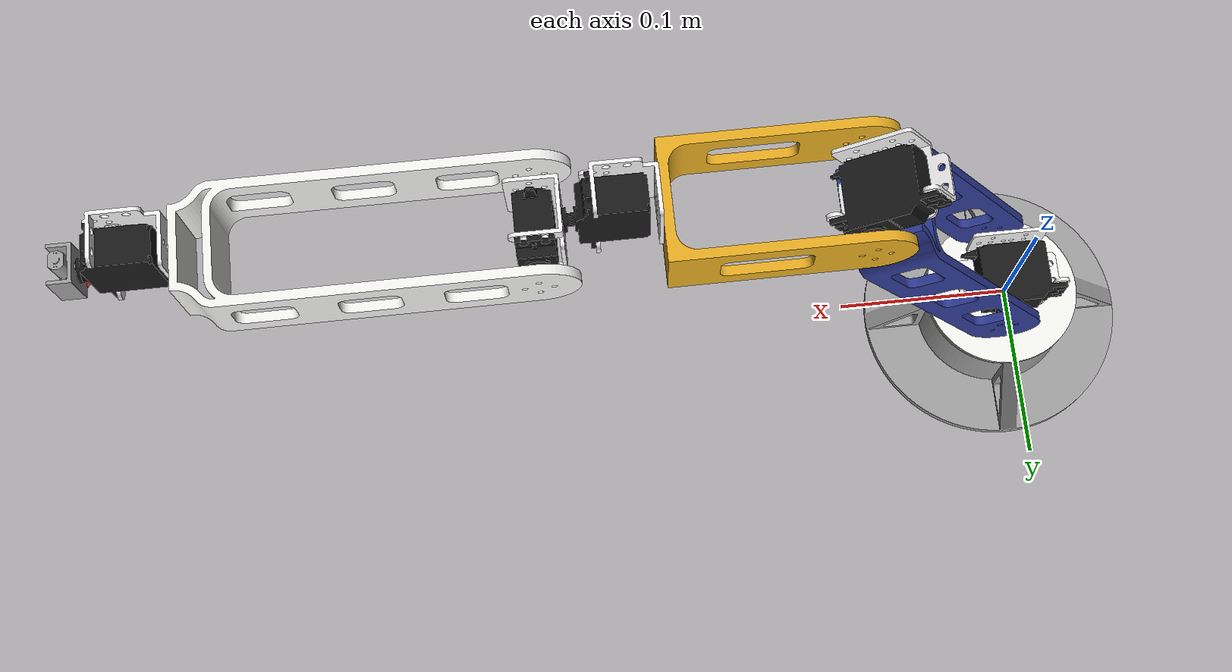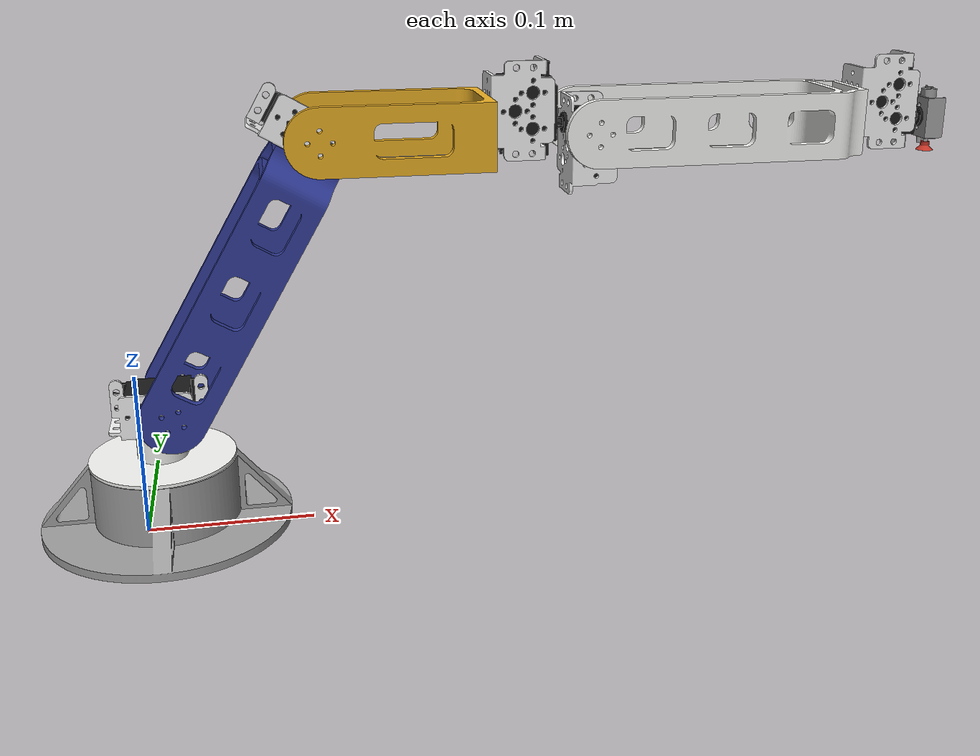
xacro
<?xml version="1.0" ?>
<robot name="robotic_arm_v3" xmlns:xacro="http://www.ros.org/wiki/xacro">

<xacro:include filename="$(find robotic_arm_v3_description)/urdf/materials.xacro" />
<xacro:include filename="$(find robotic_arm_v3_description)/urdf/robotic_arm_v3.trans" />
<xacro:include filename="$(find robotic_arm_v3_description)/urdf/robotic_arm_v3.gazebo" />
<link name="base_link">
  <inertial>
    <origin xyz="0.012483790570884359 0.012013723268763227 0.015430436005487897" rpy="0 0 0"/>
    <mass value="1.5468533136807916"/>
    <inertia ixx="0.001903" iyy="0.001902" izz="0.003158" ixy="-0.0" iyz="-0.0" ixz="-1.7e-05"/>
  </inertial>
  <visual>
    <origin xyz="0 0 0" rpy="0 0 0"/>
    <geometry>
      <mesh filename="package://robotic_arm_v3_description/meshes/base_link.stl" scale="0.001 0.001 0.001"/>
    </geometry>
    <material name="steel_satin"/>
  </visual>
  <collision>
    <origin xyz="0 0 0" rpy="0 0 0"/>
    <geometry>
      <mesh filename="package://robotic_arm_v3_description/meshes/base_link.stl" scale="0.001 0.001 0.001"/>
    </geometry>
  </collision>
</link>

<link name="MG996R_v5_1">
  <inertial>
    <origin xyz="0.0005296585036703434 1.984599674501042e-06 0.016794911451686104" rpy="0 0 0"/>
    <mass value="0.05266070207626033"/>
    <inertia ixx="8e-06" iyy="1.3e-05" izz="8e-06" ixy="-0.0" iyz="0.0" ixz="-1e-06"/>
  </inertial>
  <visual>
    <origin xyz="-0.002 -0.012014 -0.005" rpy="0 0 0"/>
    <geometry>
      <mesh filename="package://robotic_arm_v3_description/meshes/MG996R_v5_1.stl" scale="0.001 0.001 0.001"/>
    </geometry>
    <material name="plastic_glossy_black"/>
  </visual>
  <collision>
    <origin xyz="-0.002 -0.012014 -0.005" rpy="0 0 0"/>
    <geometry>
      <mesh filename="package://robotic_arm_v3_description/meshes/MG996R_v5_1.stl" scale="0.001 0.001 0.001"/>
    </geometry>
  </collision>
</link>

<link name="link_1_1">
  <inertial>
    <origin xyz="-4.227557418717831e-10 -2.7652828298030396e-07 0.004140012337718685" rpy="0 0 0"/>
    <mass value="0.026178551905163206"/>
    <inertia ixx="8e-06" iyy="8e-06" izz="1.4e-05" ixy="-0.0" iyz="-0.0" ixz="0.0"/>
  </inertial>
  <visual>
    <origin xyz="-0.011436 -0.012036 -0.04487" rpy="0 0 0"/>
    <geometry>
      <mesh filename="package://robotic_arm_v3_description/meshes/link_1_1.stl" scale="0.001 0.001 0.001"/>
    </geometry>
    <material name="abs_white"/>
  </visual>
  <collision>
    <origin xyz="-0.011436 -0.012036 -0.04487" rpy="0 0 0"/>
    <geometry>
      <mesh filename="package://robotic_arm_v3_description/meshes/link_1_1.stl" scale="0.001 0.001 0.001"/>
    </geometry>
  </collision>
</link>

<link name="servo_motor_mount_v2_1">
  <inertial>
    <origin xyz="-4.229836949448673e-10 -0.006932947890606664 0.00684844392624652" rpy="0 0 0"/>
    <mass value="0.01586225500619648"/>
    <inertia ixx="4e-06" iyy="5e-06" izz="7e-06" ixy="0.0" iyz="1e-06" ixz="0.0"/>
  </inertial>
  <visual>
    <origin xyz="-0.011436 -0.012036 -0.06437" rpy="0 0 0"/>
    <geometry>
      <mesh filename="package://robotic_arm_v3_description/meshes/servo_motor_mount_v2_1.stl" scale="0.001 0.001 0.001"/>
    </geometry>
    <material name="aluminum_satin"/>
  </visual>
  <collision>
    <origin xyz="-0.011436 -0.012036 -0.06437" rpy="0 0 0"/>
    <geometry>
      <mesh filename="package://robotic_arm_v3_description/meshes/servo_motor_mount_v2_1.stl" scale="0.001 0.001 0.001"/>
    </geometry>
  </collision>
</link>

<link name="MG996R_v5__1__1">
  <inertial>
    <origin xyz="0.0007836580806909778 0.0034033581921663458 0.011396015400325477" rpy="0 0 0"/>
    <mass value="0.05266070207626033"/>
    <inertia ixx="8e-06" iyy="8e-06" izz="1.3e-05" ixy="-1e-06" iyz="-0.0" ixz="0.0"/>
  </inertial>
  <visual>
    <origin xyz="-0.011436 -0.012036 -0.06637" rpy="0 0 0"/>
    <geometry>
      <mesh filename="package://robotic_arm_v3_description/meshes/MG996R_v5__1__1.stl" scale="0.001 0.001 0.001"/>
    </geometry>
    <material name="plastic_glossy_black"/>
  </visual>
  <collision>
    <origin xyz="-0.011436 -0.012036 -0.06637" rpy="0 0 0"/>
    <geometry>
      <mesh filename="package://robotic_arm_v3_description/meshes/MG996R_v5__1__1.stl" scale="0.001 0.001 0.001"/>
    </geometry>
  </collision>
</link>

<link name="link_2_1">
  <inertial>
    <origin xyz="0.046278988159250474 -0.026250276528283135 0.08015783680822662" rpy="0 0 0"/>
    <mass value="0.0748448400142544"/>
    <inertia ixx="0.000257" iyy="0.000283" izz="0.000127" ixy="0.0" iyz="0.0" ixz="-0.000113"/>
  </inertial>
  <visual>
    <origin xyz="-0.021126 -0.038515 -0.077746" rpy="0 0 0"/>
    <geometry>
      <mesh filename="package://robotic_arm_v3_description/meshes/link_2_1.stl" scale="0.001 0.001 0.001"/>
    </geometry>
    <material name="paint_enamel_glossy_blue"/>
  </visual>
  <collision>
    <origin xyz="-0.021126 -0.038515 -0.077746" rpy="0 0 0"/>
    <geometry>
      <mesh filename="package://robotic_arm_v3_description/meshes/link_2_1.stl" scale="0.001 0.001 0.001"/>
    </geometry>
  </collision>
</link>

<link name="servo_motor_mount_v2__1__1">
  <inertial>
    <origin xyz="-0.005236171286301994 -0.006932947890606934 0.01093028193188128" rpy="0 0 0"/>
    <mass value="0.01586225500619648"/>
    <inertia ixx="4e-06" iyy="5e-06" izz="6e-06" ixy="0.0" iyz="0.0" ixz="1e-06"/>
  </inertial>
  <visual>
    <origin xyz="-0.106126 -0.012265 -0.224971" rpy="0 0 0"/>
    <geometry>
      <mesh filename="package://robotic_arm_v3_description/meshes/servo_motor_mount_v2__1__1.stl" scale="0.001 0.001 0.001"/>
    </geometry>
    <material name="aluminum_satin"/>
  </visual>
  <collision>
    <origin xyz="-0.106126 -0.012265 -0.224971" rpy="0 0 0"/>
    <geometry>
      <mesh filename="package://robotic_arm_v3_description/meshes/servo_motor_mount_v2__1__1.stl" scale="0.001 0.001 0.001"/>
    </geometry>
  </collision>
</link>

<link name="MG996R_v5__2__1">
  <inertial>
    <origin xyz="0.0063762826228114106 0.003403358192166068 0.009476815909690656" rpy="0 0 0"/>
    <mass value="0.05266070207626033"/>
    <inertia ixx="9e-06" iyy="8e-06" izz="1.1e-05" ixy="-1e-06" iyz="0.0" ixz="2e-06"/>
  </inertial>
  <visual>
    <origin xyz="-0.098466 -0.012265 -0.231703" rpy="0 0 0"/>
    <geometry>
      <mesh filename="package://robotic_arm_v3_description/meshes/MG996R_v5__2__1.stl" scale="0.001 0.001 0.001"/>
    </geometry>
    <material name="plastic_glossy_black"/>
  </visual>
  <collision>
    <origin xyz="-0.098466 -0.012265 -0.231703" rpy="0 0 0"/>
    <geometry>
      <mesh filename="package://robotic_arm_v3_description/meshes/MG996R_v5__2__1.stl" scale="0.001 0.001 0.001"/>
    </geometry>
  </collision>
</link>

<link name="link_3_1">
  <inertial>
    <origin xyz="0.053981839516534444 -0.026250276528283333 -4.489916154148954e-07" rpy="0 0 0"/>
    <mass value="0.052397770007646234"/>
    <inertia ixx="4.4e-05" iyy="9.1e-05" izz="0.00012" ixy="-0.0" iyz="-0.0" ixz="0.0"/>
  </inertial>
  <visual>
    <origin xyz="-0.112546 -0.038744 -0.23671" rpy="0 0 0"/>
    <geometry>
      <mesh filename="package://robotic_arm_v3_description/meshes/link_3_1.stl" scale="0.001 0.001 0.001"/>
    </geometry>
    <material name="paint_enamel_glossy_yellow"/>
  </visual>
  <collision>
    <origin xyz="-0.112546 -0.038744 -0.23671" rpy="0 0 0"/>
    <geometry>
      <mesh filename="package://robotic_arm_v3_description/meshes/link_3_1.stl" scale="0.001 0.001 0.001"/>
    </geometry>
  </collision>
</link>

<link name="servo_motor_mount_v2__2__1">
  <inertial>
    <origin xyz="0.014066859448756575 -0.007339503171760749 0.011608317931853795" rpy="0 0 0"/>
    <mass value="0.01586225500619648"/>
    <inertia ixx="5e-06" iyy="7e-06" izz="4e-06" ixy="1e-06" iyz="0.0" ixz="0.0"/>
  </inertial>
  <visual>
    <origin xyz="-0.212546 -0.012494 -0.23671" rpy="0 0 0"/>
    <geometry>
      <mesh filename="package://robotic_arm_v3_description/meshes/servo_motor_mount_v2__2__1.stl" scale="0.001 0.001 0.001"/>
    </geometry>
    <material name="aluminum_satin"/>
  </visual>
  <collision>
    <origin xyz="-0.212546 -0.012494 -0.23671" rpy="0 0 0"/>
    <geometry>
      <mesh filename="package://robotic_arm_v3_description/meshes/servo_motor_mount_v2__2__1.stl" scale="0.001 0.001 0.001"/>
    </geometry>
  </collision>
</link>

<link name="MG996R_v5__3__1">
  <inertial>
    <origin xyz="0.022294165531529547 -0.000997409035859256 -0.0005293405718122257" rpy="0 0 0"/>
    <mass value="0.05266070207626033"/>
    <inertia ixx="8e-06" iyy="1.3e-05" izz="8e-06" ixy="0.0" iyz="0.0" ixz="1e-06"/>
  </inertial>
  <visual>
    <origin xyz="-0.214546 -0.012806 -0.248318" rpy="0 0 0"/>
    <geometry>
      <mesh filename="package://robotic_arm_v3_description/meshes/MG996R_v5__3__1.stl" scale="0.001 0.001 0.001"/>
    </geometry>
    <material name="plastic_glossy_black"/>
  </visual>
  <collision>
    <origin xyz="-0.214546 -0.012806 -0.248318" rpy="0 0 0"/>
    <geometry>
      <mesh filename="package://robotic_arm_v3_description/meshes/MG996R_v5__3__1.stl" scale="0.001 0.001 0.001"/>
    </geometry>
  </collision>
</link>

<link name="link_4__1__1">
  <inertial>
    <origin xyz="0.0068476980060900305 -0.0069323415261403395 -0.012499681645158217" rpy="0 0 0"/>
    <mass value="0.01586225500619648"/>
    <inertia ixx="7e-06" iyy="5e-06" izz="4e-06" ixy="1e-06" iyz="-0.0" ixz="-0.0"/>
  </inertial>
  <visual>
    <origin xyz="-0.259916 -0.011828 -0.238882" rpy="0 0 0"/>
    <geometry>
      <mesh filename="package://robotic_arm_v3_description/meshes/link_4__1__1.stl" scale="0.001 0.001 0.001"/>
    </geometry>
    <material name="aluminum_satin"/>
  </visual>
  <collision>
    <origin xyz="-0.259916 -0.011828 -0.238882" rpy="0 0 0"/>
    <geometry>
      <mesh filename="package://robotic_arm_v3_description/meshes/link_4__1__1.stl" scale="0.001 0.001 0.001"/>
    </geometry>
  </collision>
</link>

<link name="MG996R_v5__4__1">
  <inertial>
    <origin xyz="0.011603792141991476 0.003403964556632671 0.0007839768585079787" rpy="0 0 0"/>
    <mass value="0.05266070207626033"/>
    <inertia ixx="1.3e-05" iyy="8e-06" izz="8e-06" ixy="0.0" iyz="-1e-06" ixz="-0.0"/>
  </inertial>
  <visual>
    <origin xyz="-0.261916 -0.011828 -0.226382" rpy="0 0 0"/>
    <geometry>
      <mesh filename="package://robotic_arm_v3_description/meshes/MG996R_v5__4__1.stl" scale="0.001 0.001 0.001"/>
    </geometry>
    <material name="plastic_glossy_black"/>
  </visual>
  <collision>
    <origin xyz="-0.261916 -0.011828 -0.226382" rpy="0 0 0"/>
    <geometry>
      <mesh filename="package://robotic_arm_v3_description/meshes/MG996R_v5__4__1.stl" scale="0.001 0.001 0.001"/>
    </geometry>
  </collision>
</link>

<link name="link_5_1">
  <inertial>
    <origin xyz="0.09255750902445237 -0.026249670163816744 3.179318582846591e-07" rpy="0 0 0"/>
    <mass value="0.0748448400142544"/>
    <inertia ixx="6.2e-05" iyy="0.000283" izz="0.000322" ixy="-0.0" iyz="0.0" ixz="0.0"/>
  </inertial>
  <visual>
    <origin xyz="-0.27354 -0.038307 -0.236072" rpy="0 0 0"/>
    <geometry>
      <mesh filename="package://robotic_arm_v3_description/meshes/link_5_1.stl" scale="0.001 0.001 0.001"/>
    </geometry>
    <material name="abs_white"/>
  </visual>
  <collision>
    <origin xyz="-0.27354 -0.038307 -0.236072" rpy="0 0 0"/>
    <geometry>
      <mesh filename="package://robotic_arm_v3_description/meshes/link_5_1.stl" scale="0.001 0.001 0.001"/>
    </geometry>
  </collision>
</link>

<link name="servo_motor_mount_v2__4__1">
  <inertial>
    <origin xyz="0.01406685965171045 -0.007338896807294115 0.011001084855327442" rpy="0 0 0"/>
    <mass value="0.01586225500619648"/>
    <inertia ixx="5e-06" iyy="7e-06" izz="4e-06" ixy="1e-06" iyz="0.0" ixz="0.0"/>
  </inertial>
  <visual>
    <origin xyz="-0.44354 -0.012057 -0.236072" rpy="0 0 0"/>
    <geometry>
      <mesh filename="package://robotic_arm_v3_description/meshes/servo_motor_mount_v2__4__1.stl" scale="0.001 0.001 0.001"/>
    </geometry>
    <material name="aluminum_satin"/>
  </visual>
  <collision>
    <origin xyz="-0.44354 -0.012057 -0.236072" rpy="0 0 0"/>
    <geometry>
      <mesh filename="package://robotic_arm_v3_description/meshes/servo_motor_mount_v2__4__1.stl" scale="0.001 0.001 0.001"/>
    </geometry>
  </collision>
</link>

<link name="MG996R_v5__5__1">
  <inertial>
    <origin xyz="0.02229416573448345 -0.0004974088329054386 -0.0005298067248649674" rpy="0 0 0"/>
    <mass value="0.05266070207626033"/>
    <inertia ixx="8e-06" iyy="1.3e-05" izz="8e-06" ixy="0.0" iyz="0.0" ixz="1e-06"/>
  </inertial>
  <visual>
    <origin xyz="-0.44554 -0.012057 -0.244682" rpy="0 0 0"/>
    <geometry>
      <mesh filename="package://robotic_arm_v3_description/meshes/MG996R_v5__5__1.stl" scale="0.001 0.001 0.001"/>
    </geometry>
    <material name="plastic_glossy_black"/>
  </visual>
  <collision>
    <origin xyz="-0.44554 -0.012057 -0.244682" rpy="0 0 0"/>
    <geometry>
      <mesh filename="package://robotic_arm_v3_description/meshes/MG996R_v5__5__1.stl" scale="0.001 0.001 0.001"/>
    </geometry>
  </collision>
</link>

<link name="bracket_v1_1">
  <inertial>
    <origin xyz="0.003842400475547958 3.3003913712040256e-07 -1.477989753084774e-07" rpy="0 0 0"/>
    <mass value="0.014496796479023782"/>
    <inertia ixx="2e-06" iyy="1e-06" izz="1e-06" ixy="-0.0" iyz="0.0" ixz="-0.0"/>
  </inertial>
  <visual>
    <origin xyz="-0.49091 -0.011579 -0.235246" rpy="0 0 0"/>
    <geometry>
      <mesh filename="package://robotic_arm_v3_description/meshes/bracket_v1_1.stl" scale="0.001 0.001 0.001"/>
    </geometry>
    <material name="steel_satin"/>
  </visual>
  <collision>
    <origin xyz="-0.49091 -0.011579 -0.235246" rpy="0 0 0"/>
    <geometry>
      <mesh filename="package://robotic_arm_v3_description/meshes/bracket_v1_1.stl" scale="0.001 0.001 0.001"/>
    </geometry>
  </collision>
</link>

<link name="SC3101PM_Micro_Vacuum_Pump_v4_1">
  <inertial>
    <origin xyz="0.003749530878823293 4.3695998330883085e-05 -0.0009019794464975028" rpy="0 0 0"/>
    <mass value="0.021742991324107133"/>
    <inertia ixx="2e-06" iyy="2e-06" izz="0.0" ixy="-0.0" iyz="0.0" ixz="0.0"/>
  </inertial>
  <visual>
    <origin xyz="-0.49291 -0.011579 -0.235246" rpy="0 0 0"/>
    <geometry>
      <mesh filename="package://robotic_arm_v3_description/meshes/SC3101PM_Micro_Vacuum_Pump_v4_1.stl" scale="0.001 0.001 0.001"/>
    </geometry>
    <material name="steel_satin"/>
  </visual>
  <collision>
    <origin xyz="-0.49291 -0.011579 -0.235246" rpy="0 0 0"/>
    <geometry>
      <mesh filename="package://robotic_arm_v3_description/meshes/SC3101PM_Micro_Vacuum_Pump_v4_1.stl" scale="0.001 0.001 0.001"/>
    </geometry>
  </collision>
</link>

<link name="suction_cup_v2_1">
  <inertial>
    <origin xyz="-4.6898596595124076e-07 3.3003876368474516e-07 -0.00028237251026094756" rpy="0 0 0"/>
    <mass value="8.196286287484906e-05"/>
    <inertia ixx="0.0" iyy="0.0" izz="0.0" ixy="0.0" iyz="-0.0" ixz="0.0"/>
  </inertial>
  <visual>
    <origin xyz="-0.49666 -0.009704 -0.217355" rpy="0 0 0"/>
    <geometry>
      <mesh filename="package://robotic_arm_v3_description/meshes/suction_cup_v2_1.stl" scale="0.001 0.001 0.001"/>
    </geometry>
    <material name="paint_enamel_glossy_red"/>
  </visual>
  <collision>
    <origin xyz="-0.49666 -0.009704 -0.217355" rpy="0 0 0"/>
    <geometry>
      <mesh filename="package://robotic_arm_v3_description/meshes/suction_cup_v2_1.stl" scale="0.001 0.001 0.001"/>
    </geometry>
  </collision>
</link>

<joint name="Rigid1" type="fixed">
  <origin xyz="0.002 0.012014 0.005" rpy="0 0 0"/>
  <parent link="base_link"/>
  <child link="MG996R_v5_1"/>
</joint>

<joint name="twist_1" type="continuous">
  <origin xyz="0.009436 2.2e-05 0.03987" rpy="0 0 0"/>
  <parent link="MG996R_v5_1"/>
  <child link="link_1_1"/>
  <axis xyz="0.0 -0.0 1.0"/>
</joint>

<joint name="Rigid3" type="fixed">
  <origin xyz="0.0 0.0 0.0195" rpy="0 0 0"/>
  <parent link="link_1_1"/>
  <child link="servo_motor_mount_v2_1"/>
</joint>

<joint name="Rigid4" type="fixed">
  <origin xyz="0.0 0.0 0.002" rpy="0 0 0"/>
  <parent link="servo_motor_mount_v2_1"/>
  <child link="MG996R_v5__1__1"/>
</joint>

<joint name="rev_1" type="continuous">
  <origin xyz="0.00969 0.026479 0.011376" rpy="0 0 0"/>
  <parent link="MG996R_v5__1__1"/>
  <child link="link_2_1"/>
  <axis xyz="0.0 1.0 0.0"/>
</joint>

<joint name="Rigid6" type="fixed">
  <origin xyz="0.085 -0.02625 0.147225" rpy="0 0 0"/>
  <parent link="link_2_1"/>
  <child link="servo_motor_mount_v2__1__1"/>
</joint>

<joint name="Rigid7" type="fixed">
  <origin xyz="-0.00766 0.0 0.006732" rpy="0 0 0"/>
  <parent link="servo_motor_mount_v2__1__1"/>
  <child link="MG996R_v5__2__1"/>
</joint>

<joint name="rev_2" type="continuous">
  <origin xyz="0.01408 0.026479 0.005007" rpy="0 0 0"/>
  <parent link="MG996R_v5__2__1"/>
  <child link="link_3_1"/>
  <axis xyz="0.0 1.0 0.0"/>
</joint>

<joint name="rev_3" type="continuous">
  <origin xyz="0.1 -0.02625 0.0" rpy="0 0 0"/>
  <parent link="link_3_1"/>
  <child link="servo_motor_mount_v2__2__1"/>
  <axis xyz="1.0 -0.0 -0.0"/>
</joint>

<joint name="Rigid10" type="fixed">
  <origin xyz="0.002 0.000312 0.011608" rpy="0 0 0"/>
  <parent link="servo_motor_mount_v2__2__1"/>
  <child link="MG996R_v5__3__1"/>
</joint>

<joint name="twist_2" type="continuous">
  <origin xyz="0.04537 -0.000978 -0.009436" rpy="0 0 0"/>
  <parent link="MG996R_v5__3__1"/>
  <child link="link_4__1__1"/>
  <axis xyz="1.0 -0.0 -0.0"/>
</joint>

<joint name="Rigid12" type="fixed">
  <origin xyz="0.002 0.0 -0.0125" rpy="0 0 0"/>
  <parent link="link_4__1__1"/>
  <child link="MG996R_v5__4__1"/>
</joint>

<joint name="twist_3" type="continuous">
  <origin xyz="0.011624 0.026479 0.00969" rpy="0 0 0"/>
  <parent link="MG996R_v5__4__1"/>
  <child link="link_5_1"/>
  <axis xyz="0.0 1.0 0.0"/>
</joint>

<joint name="Rigid14" type="fixed">
  <origin xyz="0.17 -0.02625 0.0" rpy="0 0 0"/>
  <parent link="link_5_1"/>
  <child link="servo_motor_mount_v2__4__1"/>
</joint>

<joint name="Rigid15" type="fixed">
  <origin xyz="0.002 0.0 0.00861" rpy="0 0 0"/>
  <parent link="servo_motor_mount_v2__4__1"/>
  <child link="MG996R_v5__5__1"/>
</joint>

<joint name="Rev16" type="continuous">
  <origin xyz="0.04537 -0.000478 -0.009436" rpy="0 0 0"/>
  <parent link="MG996R_v5__5__1"/>
  <child link="bracket_v1_1"/>
  <axis xyz="1.0 0.0 0.0"/>
</joint>

<joint name="Rigid17" type="fixed">
  <origin xyz="0.002 0.0 0.0" rpy="0 0 0"/>
  <parent link="bracket_v1_1"/>
  <child link="SC3101PM_Micro_Vacuum_Pump_v4_1"/>
</joint>

<joint name="Rigid18" type="fixed">
  <origin xyz="0.00375 -0.001875 -0.017891" rpy="0 0 0"/>
  <parent link="SC3101PM_Micro_Vacuum_Pump_v4_1"/>
  <child link="suction_cup_v2_1"/>
</joint>

</robot>

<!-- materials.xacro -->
<robot name="robotic_arm_v3" xmlns:xacro="http://www.ros.org/wiki/xacro" >

<material name="silver_default">
  <color rgba="0.700 0.700 0.700 1.000"/>
</material>
<material name="steel_satin">
  <color rgba="0.6274509803921569 0.6274509803921569 0.6274509803921569 1.0"/>
</material>
<material name="plastic_glossy_black">
  <color rgba="0.09803921568627451 0.09803921568627451 0.09803921568627451 1.0"/>
</material>
<material name="abs_white">
  <color rgba="0.9647058823529412 0.9647058823529412 0.9529411764705882 1.0"/>
</material>
<material name="aluminum_satin">
  <color rgba="0.9607843137254902 0.9607843137254902 0.9647058823529412 1.0"/>
</material>
<material name="paint_enamel_glossy_blue">
  <color rgba="0.18823529411764706 0.23137254901960785 0.5882352941176471 1.0"/>
</material>
<material name="paint_enamel_glossy_yellow">
  <color rgba="0.9098039215686274 0.6784313725490196 0.13725490196078433 1.0"/>
</material>
<material name="paint_enamel_glossy_red">
  <color rgba="0.7686274509803922 0.20784313725490197 0.15294117647058825 1.0"/>
</material>

</robot>

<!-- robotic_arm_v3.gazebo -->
<robot name="robotic_arm_v3" xmlns:xacro="http://www.ros.org/wiki/xacro" >

<xacro:property name="body_color" value="Gazebo/Silver" />

<gazebo>
  <plugin name="control" filename="libgazebo_ros_control.so"/>
</gazebo>
<gazebo reference="base_link">
  <material>${body_color}</material>
  <mu1>0.2</mu1>
  <mu2>0.2</mu2>
  <selfCollide>true</selfCollide>
  <gravity>true</gravity>
</gazebo>

<gazebo reference="MG996R_v5_1">
  <material>${body_color}</material>
  <mu1>0.2</mu1>
  <mu2>0.2</mu2>
  <selfCollide>true</selfCollide>
</gazebo>

<gazebo reference="link_1_1">
  <material>${body_color}</material>
  <mu1>0.2</mu1>
  <mu2>0.2</mu2>
  <selfCollide>true</selfCollide>
</gazebo>

<gazebo reference="servo_motor_mount_v2_1">
  <material>${body_color}</material>
  <mu1>0.2</mu1>
  <mu2>0.2</mu2>
  <selfCollide>true</selfCollide>
</gazebo>

<gazebo reference="MG996R_v5__1__1">
  <material>${body_color}</material>
  <mu1>0.2</mu1>
  <mu2>0.2</mu2>
  <selfCollide>true</selfCollide>
</gazebo>

<gazebo reference="link_2_1">
  <material>${body_color}</material>
  <mu1>0.2</mu1>
  <mu2>0.2</mu2>
  <selfCollide>true</selfCollide>
</gazebo>

<gazebo reference="servo_motor_mount_v2__1__1">
  <material>${body_color}</material>
  <mu1>0.2</mu1>
  <mu2>0.2</mu2>
  <selfCollide>true</selfCollide>
</gazebo>

<gazebo reference="MG996R_v5__2__1">
  <material>${body_color}</material>
  <mu1>0.2</mu1>
  <mu2>0.2</mu2>
  <selfCollide>true</selfCollide>
</gazebo>

<gazebo reference="link_3_1">
  <material>${body_color}</material>
  <mu1>0.2</mu1>
  <mu2>0.2</mu2>
  <selfCollide>true</selfCollide>
</gazebo>

<gazebo reference="servo_motor_mount_v2__2__1">
  <material>${body_color}</material>
  <mu1>0.2</mu1>
  <mu2>0.2</mu2>
  <selfCollide>true</selfCollide>
</gazebo>

<gazebo reference="MG996R_v5__3__1">
  <material>${body_color}</material>
  <mu1>0.2</mu1>
  <mu2>0.2</mu2>
  <selfCollide>true</selfCollide>
</gazebo>

<gazebo reference="link_4__1__1">
  <material>${body_color}</material>
  <mu1>0.2</mu1>
  <mu2>0.2</mu2>
  <selfCollide>true</selfCollide>
</gazebo>

<gazebo reference="MG996R_v5__4__1">
  <material>${body_color}</material>
  <mu1>0.2</mu1>
  <mu2>0.2</mu2>
  <selfCollide>true</selfCollide>
</gazebo>

<gazebo reference="link_5_1">
  <material>${body_color}</material>
  <mu1>0.2</mu1>
  <mu2>0.2</mu2>
  <selfCollide>true</selfCollide>
</gazebo>

<gazebo reference="servo_motor_mount_v2__4__1">
  <material>${body_color}</material>
  <mu1>0.2</mu1>
  <mu2>0.2</mu2>
  <selfCollide>true</selfCollide>
</gazebo>

<gazebo reference="MG996R_v5__5__1">
  <material>${body_color}</material>
  <mu1>0.2</mu1>
  <mu2>0.2</mu2>
  <selfCollide>true</selfCollide>
</gazebo>

<gazebo reference="bracket_v1_1">
  <material>${body_color}</material>
  <mu1>0.2</mu1>
  <mu2>0.2</mu2>
  <selfCollide>true</selfCollide>
</gazebo>

<gazebo reference="SC3101PM_Micro_Vacuum_Pump_v4_1">
  <material>${body_color}</material>
  <mu1>0.2</mu1>
  <mu2>0.2</mu2>
  <selfCollide>true</selfCollide>
</gazebo>

<gazebo reference="suction_cup_v2_1">
  <material>${body_color}</material>
  <mu1>0.2</mu1>
  <mu2>0.2</mu2>
  <selfCollide>true</selfCollide>
</gazebo>

</robot>
